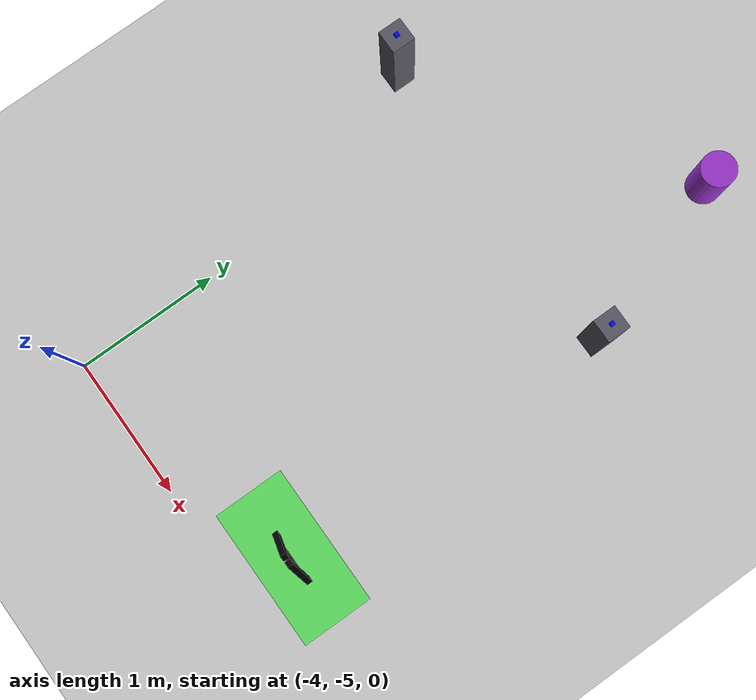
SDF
<sdf version="1.4">
 <world name="default">
  <model name="ground_plane">
   <static>1</static>
   <link name="link">
    <collision name="collision">
     <geometry><plane><normal>0 0 1</normal><size>100 100</size></plane></geometry>
     <surface><friction><ode><mu>100</mu><mu2>50</mu2></ode></friction></surface>
    </collision>
    <visual name="visual">
     <cast_shadows>0</cast_shadows>
     <geometry><plane><normal>0 0 1</normal><size>100 100</size></plane></geometry>
     <material>
      <script><uri>file://media/materials/scripts/gazebo.material</uri><name>Gazebo/Grey</name></script>
     </material>
    </visual>
    <velocity_decay><linear>0</linear><angular>0</angular></velocity_decay>
   </link>
  </model>
  <model name="blue_cube_1">
   <pose>-4.4 -2.2 0.75 0 0 0.0</pose>
   <link name="link">
    <inertial><mass>0.1</mass></inertial>
    <collision name="collision"><geometry><box><size>0.03 0.03 0.03</size></box></geometry></collision>
    <visual name="visual">
     <geometry><box><size>0.03 0.03 0.03</size></box></geometry>
     <material><ambient>0 0 1 1</ambient><diffuse>0 0 1 1</diffuse></material>
    </visual>
   </link>
  </model>
  <model name="blue_cube_2">
   <pose>-2.2 -2.2 0.75 0 0 0.0</pose>
   <link name="link">
    <inertial><mass>0.1</mass></inertial>
    <collision name="collision"><geometry><box><size>0.03 0.03 0.03</size></box></geometry></collision>
    <visual name="visual">
     <geometry><box><size>0.03 0.03 0.03</size></box></geometry>
     <material><ambient>0 0 1 1</ambient><diffuse>0 0 1 1</diffuse></material>
    </visual>
   </link>
  </model>
  <model name="zone_a">
   <pose>-2.2 -4.6 0.01 0 0 0.0</pose>
   <static>true</static>
   <pose>3.0 1.0 0.01 0 0 0</pose>
   <link name="base">
    <visual name="visual">
     <geometry><box><size>1.0 0.5 0.02</size></box></geometry>
     <material><ambient>0 1 0 0.5</ambient><diffuse>0 1 0 0.5</diffuse></material>
    </visual>
   </link>
   <link name="letter_A_1">
    <pose>-0.1 0 0.22 0 0.4 0</pose>
    <visual name="v">
     <geometry><box><size>0.04 0.04 0.4</size></box></geometry>
     <material><ambient>0 0 0 1</ambient><diffuse>0 0 0 1</diffuse></material>
    </visual>
   </link>
   <link name="letter_A_2">
    <pose>0.1 0 0.22 0 -0.4 0</pose>
    <visual name="v">
     <geometry><box><size>0.04 0.04 0.4</size></box></geometry>
     <material><ambient>0 0 0 1</ambient><diffuse>0 0 0 1</diffuse></material>
    </visual>
   </link>
   <link name="letter_A_3">
    <pose>0 0 0.25 0 0 0</pose>
    <visual name="v">
     <geometry><box><size>0.15 0.04 0.04</size></box></geometry>
     <material><ambient>0 0 0 1</ambient><diffuse>0 0 0 1</diffuse></material>
    </visual>
   </link>
  </model>
  <model name="support_blue_cube_1">
   <static>true</static>
   <pose>-4.4 -2.2 0.375 0 0 0</pose>
   <link name="link">
    <collision name="collision"><geometry><box><size>0.16 0.16 0.75</size></box></geometry></collision>
    <visual name="visual">
     <geometry><box><size>0.16 0.16 0.75</size></box></geometry>
     <material><ambient>0.35 0.35 0.4 1</ambient><diffuse>0.35 0.35 0.4 1</diffuse></material>
    </visual>
   </link>
  </model>
  <model name="support_blue_cube_2">
   <static>true</static>
   <pose>-2.2 -2.2 0.375 0 0 0</pose>
   <link name="link">
    <collision name="collision"><geometry><box><size>0.16 0.16 0.75</size></box></geometry></collision>
    <visual name="visual">
     <geometry><box><size>0.16 0.16 0.75</size></box></geometry>
     <material><ambient>0.35 0.35 0.4 1</ambient><diffuse>0.35 0.35 0.4 1</diffuse></material>
    </visual>
   </link>
  </model>
  <model name="obstacle_2">
   <pose>-2.6 -1.0 0.23500000000000001 0 0 0</pose>
   <link name="link">
    <kinematic>true</kinematic>
    <inertial><mass>1.0</mass></inertial>
    <collision name="collision">
     <geometry><cylinder><radius>0.12</radius><length>0.45</length></cylinder></geometry>
    </collision>
    <visual name="visual">
     <geometry><cylinder><radius>0.12</radius><length>0.45</length></cylinder></geometry>
     <material><ambient>0.6 0.2 0.8 1.0</ambient><diffuse>0.6 0.2 0.8 1.0</diffuse></material>
    </visual>
   </link>
  </model>
 </world>
</sdf>
